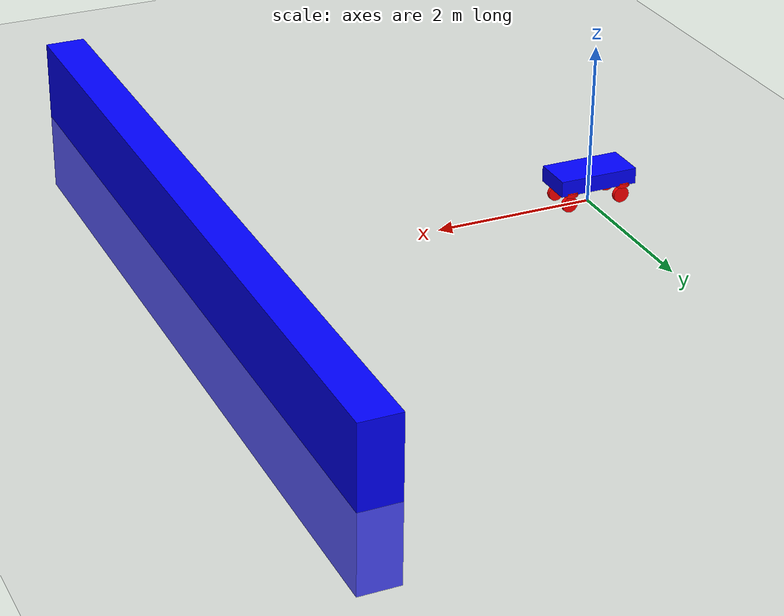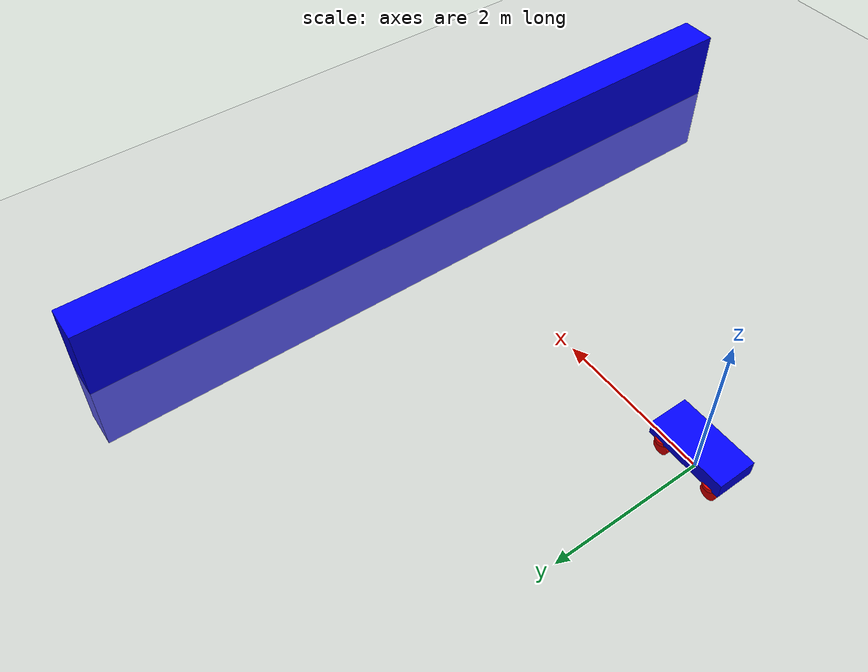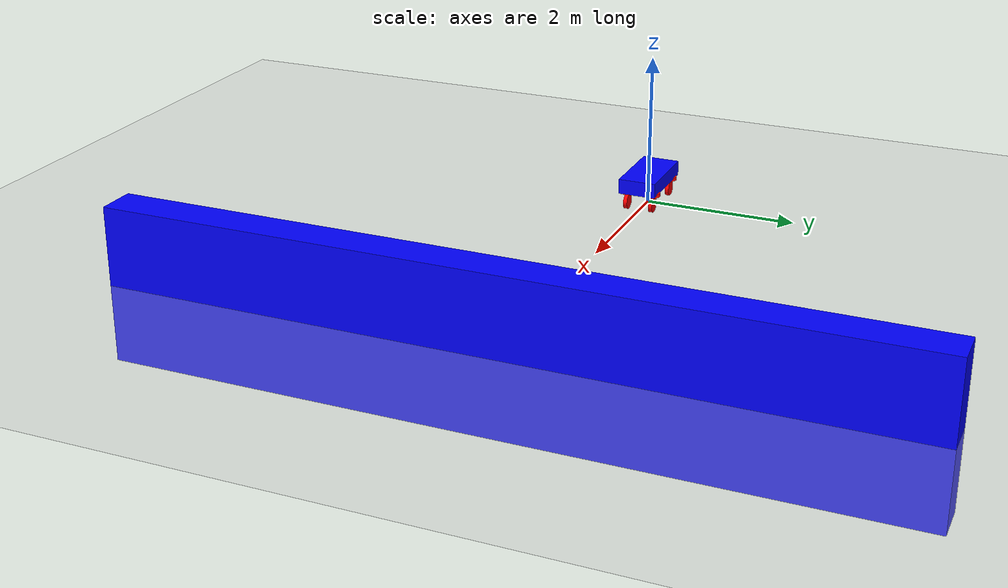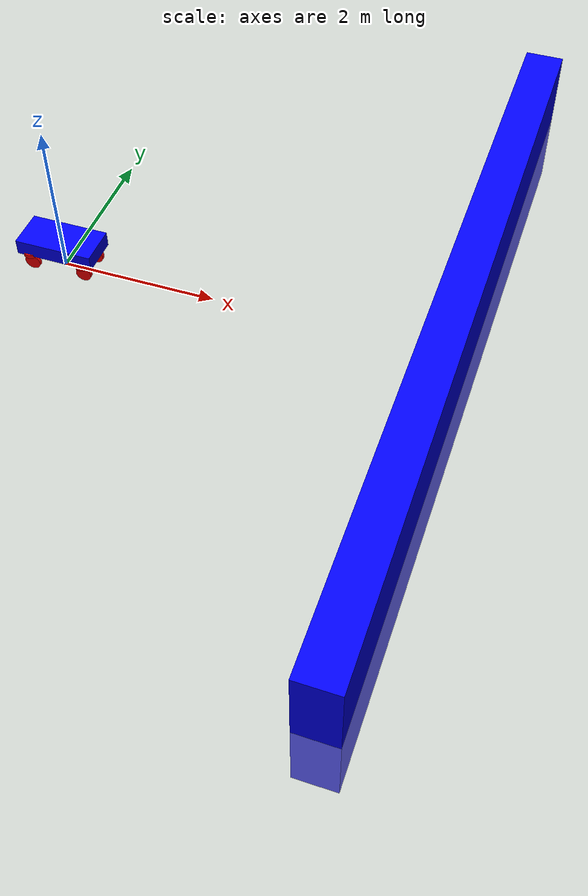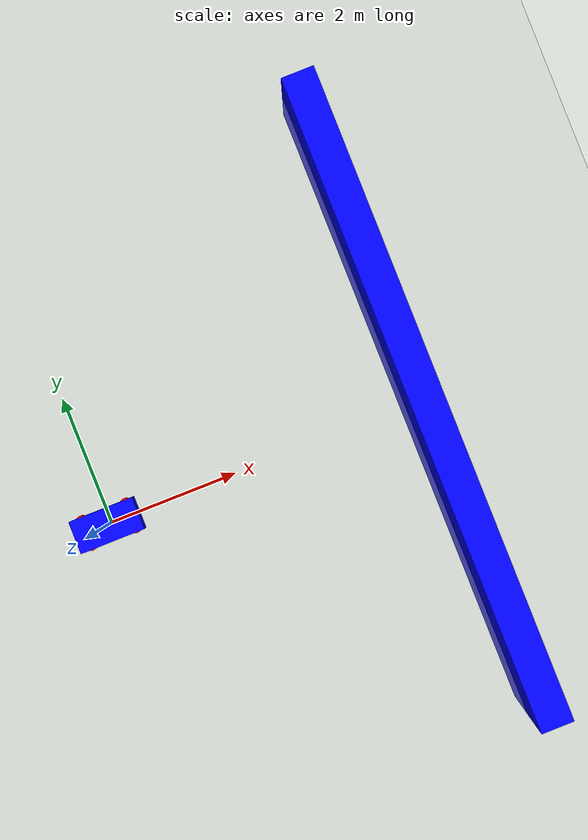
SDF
<?xml version="1.0"?>
<sdf version="1.8">
    <world name="Moving_robot">
        <physics name="1ms" type="ignored">
            <max_step_size>0.001</max_step_size>
            <real_time_factor>1.0</real_time_factor>
        </physics>
        <plugin
            filename="libignition-gazebo-physics-system.so"
            name="ignition::gazebo::systems::Physics">
        </plugin>
        <plugin
            filename="libignition-gazebo-user-commands-system.so"
            name="ignition::gazebo::systems::UserCommands">
        </plugin>
        <plugin
            filename="libignition-gazebo-scene-broadcaster-system.so"
            name="ignition::gazebo::systems::SceneBroadcaster">
        </plugin>
        <plugin filename="libignition-gazebo-imu-system.so"
            name="ignition::gazebo::systems::Imu">
        </plugin>
        <plugin filename="libignition-gazebo-contact-system.so"
            name="ignition::gazebo::systems::Contact">
        </plugin>

        <plugin filename="libignition-gazebo-imu-system.so"
            name="ignition::gazebo::systems::Imu">
        </plugin>

        <plugin filename="ignition-gazebo-sensors-system"
            name="ignition::gazebo::systems::Sensors">
            <render_engine>ogre2</render_engine>
        </plugin>

        <light type="directional" name="sun">
            <cast_shadows>true</cast_shadows>
            <pose>0 0 10 0 0 0</pose>
            <diffuse>0.8 0.8 0.8 1</diffuse>
            <specular>0.2 0.2 0.2 1</specular>
            <attenuation>
                <range>1000</range>
                <constant>0.9</constant>
                <linear>0.01</linear>
                <quadratic>0.001</quadratic>
            </attenuation>
            <direction>-0.5 0.1 -0.9</direction>
        </light>

        <model name="ground_plane">
            <static>true</static>
            <link name="link">
                <collision name="collision">
                    <geometry>
                        <plane>
                            <normal>0 0 1</normal>
                        </plane>
                    </geometry>
                </collision>
                <visual name="visual">
                    <geometry>
                        <plane>
                            <normal>0 0 1</normal>
                            <size>100 100</size>
                        </plane>
                    </geometry>
                    <material>
                        <ambient>0.8 0.8 0.8 1</ambient>
                        <diffuse>0.8 0.8 0.8 1</diffuse>
                        <specular>0.8 0.8 0.8 1</specular>
                    </material>
                </visual>
            </link>
        </model>

        <model name="finns_car" canonical_link="chassis">
            <pose relative_to='world'>0 0 0 0 0 0</pose>
            <link name="chassis">
                <pose relative_to="__model__">0 0 0.35 0 0 0</pose>
                <!-- TODO: Make this accurate -->
                <inertial> <!--inertial
                    properties of the link mass, inertia matix-->
                    <mass>1.14395</mass>
                    <inertia>
                        <ixx>0.095329</ixx>
                        <ixy>0</ixy>
                        <ixz>0</ixz>
                        <iyy>0.381317</iyy>
                        <iyz>0</iyz>
                        <izz>0.476646</izz>
                    </inertia>
                </inertial>
                <visual name='visual'>
                    <geometry>
                        <box>
                            <size>1.0 0.5 0.20</size>
                        </box>
                    </geometry>
                    <!--let's
                    add color to our link-->
                    <material>
                        <ambient>0.0 0.0 1.0 1</ambient>
                        <diffuse>0.0 0.0 1.0 1</diffuse>
                        <specular>0.0 0.0 1.0 1</specular>
                    </material>
                </visual>
                <collision name='collision'>
                    <geometry>
                        <box>
                            <size>1.0 0.5 0.5</size>
                        </box>
                    </geometry>
                </collision>
            </link>

            <frame name="front_left_frame" attached_to='chassis'>
                <pose>0.35 0.175 -0.10 0 0 0</pose>
            </frame>
            <link name='front_left_wheel'>
                <pose relative_to="front_left_frame">0 0 -0.15 -1.57 0 0</pose>
                <inertial>
                    <mass>1</mass>
                    <inertia>
                        <ixx>0.043333</ixx>
                        <ixy>0</ixy>
                        <ixz>0</ixz>
                        <iyy>0.043333</iyy>
                        <iyz>0</iyz>
                        <izz>0.08</izz>
                    </inertia>
                </inertial>
                <visual name='visual'>
                    <geometry>
                        <cylinder>
                            <radius>0.1</radius>
                            <length>0.05</length>
                        </cylinder>
                    </geometry>
                    <material>
                        <ambient>1.0 0.0 0.0 1</ambient>
                        <diffuse>1.0 0.0 0.0 1</diffuse>
                        <specular>1.0 0.0 0.0 1</specular>
                    </material>
                </visual>
                <collision name='collision'>
                    <geometry>
                        <cylinder>
                            <radius>0.1</radius>
                            <length>0.05</length>
                        </cylinder>
                    </geometry>
                </collision>
            </link>
            <link name='front_left'>
                <pose relative_to="front_left_frame">0 0 0 0 0 0</pose>
                <inertial>
                    <mass>1</mass>
                    <inertia>
                        <ixx>0.043333</ixx>
                        <ixy>0</ixy>
                        <ixz>0</ixz>
                        <iyy>0.043333</iyy>
                        <iyz>0</iyz>
                        <izz>0.08</izz>
                    </inertia>
                </inertial>
                <visual name='visual'>
                    <geometry>
                        <cylinder>
                            <radius>0.1</radius>
                            <length>0.05</length>
                        </cylinder>
                    </geometry>
                    <material>
                        <ambient>1.0 0.0 0.0 1</ambient>
                        <diffuse>1.0 0.0 0.0 1</diffuse>
                        <specular>1.0 0.0 0.0 1</specular>
                    </material>
                </visual>
                <collision name='collision'>
                    <geometry>
                        <cylinder>
                            <radius>0.1</radius>
                            <length>0.05</length>
                        </cylinder>
                    </geometry>
                </collision>
            </link>
            <joint name="front_left_wheel_joint" type="revolute">
                <pose relative_to="front_left_frame">0 0 -0.15 -1.57 0 0</pose>
                <parent>front_left</parent>
                <child>front_left_wheel</child>
                <axis>
                    <xyz expressed_in='__model__'>0 1 0</xyz> <!--can
                    be defined as any frame or even arbitrary frames-->
                    <limit>
                        <lower>-1.79769e+308</lower>    <!--negative
                        infinity-->
                        <upper>1.79769e+308</upper>     <!--positive
                        infinity-->
                    </limit>
                </axis>
            </joint>
            <joint name="front_left_joint" type="revolute">
                <pose relative_to="front_left_frame" />
                <parent>chassis</parent>
                <child>front_left</child>
                <axis>
                    <xyz expressed_in='__model__'>0 0 1</xyz> <!--can
                    be defined as any frame or even arbitrary frames-->
                    <limit>
                        <lower>-1.79769e+308</lower>    <!--negative
                        infinity-->
                        <upper>1.79769e+308</upper>     <!--positive
                        infinity-->
                    </limit>
                </axis>
            </joint>

            <frame name="front_right_frame" attached_to='chassis'>
                <pose>0.35 -0.175 -0.10 0 0 0</pose>
            </frame>
            <link name='front_right_wheel'>
                <pose relative_to="front_right_frame">0 0 -0.15 -1.57 0 0</pose>
                <inertial>
                    <mass>1</mass>
                    <inertia>
                        <ixx>0.043333</ixx>
                        <ixy>0</ixy>
                        <ixz>0</ixz>
                        <iyy>0.043333</iyy>
                        <iyz>0</iyz>
                        <izz>0.08</izz>
                    </inertia>
                </inertial>
                <visual name='visual'>
                    <geometry>
                        <cylinder>
                            <radius>0.1</radius>
                            <length>0.05</length>
                        </cylinder>
                    </geometry>
                    <material>
                        <ambient>1.0 0.0 0.0 1</ambient>
                        <diffuse>1.0 0.0 0.0 1</diffuse>
                        <specular>1.0 0.0 0.0 1</specular>
                    </material>
                </visual>
                <collision name='collision'>
                    <geometry>
                        <cylinder>
                            <radius>0.1</radius>
                            <length>0.05</length>
                        </cylinder>
                    </geometry>
                </collision>
            </link>
            <link name='front_right'>
                <pose relative_to="front_right_frame">0 0 0 0 0 0</pose>
                <inertial>
                    <mass>1</mass>
                    <inertia>
                        <ixx>0.043333</ixx>
                        <ixy>0</ixy>
                        <ixz>0</ixz>
                        <iyy>0.043333</iyy>
                        <iyz>0</iyz>
                        <izz>0.08</izz>
                    </inertia>
                </inertial>
                <visual name='visual'>
                    <geometry>
                        <cylinder>
                            <radius>0.1</radius>
                            <length>0.05</length>
                        </cylinder>
                    </geometry>
                    <material>
                        <ambient>1.0 0.0 0.0 1</ambient>
                        <diffuse>1.0 0.0 0.0 1</diffuse>
                        <specular>1.0 0.0 0.0 1</specular>
                    </material>
                </visual>
                <collision name='collision'>
                    <geometry>
                        <cylinder>
                            <radius>0.1</radius>
                            <length>0.05</length>
                        </cylinder>
                    </geometry>
                </collision>
            </link>
            <joint name="front_right_wheel_joint" type="revolute">
                <pose relative_to="front_right_frame">0 0 -0.15 -1.57 0 0</pose>
                <parent>front_right</parent>
                <child>front_right_wheel</child>
                <axis>
                    <xyz expressed_in='__model__'>0 1 0</xyz> <!--can
                    be defined as any frame or even arbitrary frames-->
                    <limit>
                        <lower>-1.79769e+308</lower>    <!--negative
                        infinity-->
                        <upper>1.79769e+308</upper>     <!--positive
                        infinity-->
                    </limit>
                </axis>
            </joint>
            <joint name="front_right_joint" type="revolute">
                <pose relative_to="front_right_frame" />
                <parent>chassis</parent>
                <child>front_right</child>
                <axis>
                    <xyz expressed_in='__model__'>0 0 1</xyz> <!--can
                    be defined as any frame or even arbitrary frames-->
                    <limit>
                        <lower>-1.79769e+308</lower>    <!--negative
                        infinity-->
                        <upper>1.79769e+308</upper>     <!--positive
                        infinity-->
                    </limit>
                </axis>
            </joint>

            <frame name="back_right_frame" attached_to='chassis'>
                <pose>-0.35 -0.175 -0.10 0 0 0</pose>
            </frame>
            <link name='back_right_wheel'>
                <pose relative_to="back_right_frame">0 0 -0.15 -1.57 0 0</pose>
                <inertial>
                    <mass>1</mass>
                    <inertia>
                        <ixx>0.043333</ixx>
                        <ixy>0</ixy>
                        <ixz>0</ixz>
                        <iyy>0.043333</iyy>
                        <iyz>0</iyz>
                        <izz>0.08</izz>
                    </inertia>
                </inertial>
                <visual name='visual'>
                    <geometry>
                        <cylinder>
                            <radius>0.1</radius>
                            <length>0.05</length>
                        </cylinder>
                    </geometry>
                    <material>
                        <ambient>1.0 0.0 0.0 1</ambient>
                        <diffuse>1.0 0.0 0.0 1</diffuse>
                        <specular>1.0 0.0 0.0 1</specular>
                    </material>
                </visual>
                <collision name='collision'>
                    <geometry>
                        <cylinder>
                            <radius>0.1</radius>
                            <length>0.05</length>
                        </cylinder>
                    </geometry>
                </collision>
            </link>
            <link name='back_right'>
                <pose relative_to="back_right_frame">0 0 0 0 0 0</pose>
                <inertial>
                    <mass>1</mass>
                    <inertia>
                        <ixx>0.043333</ixx>
                        <ixy>0</ixy>
                        <ixz>0</ixz>
                        <iyy>0.043333</iyy>
                        <iyz>0</iyz>
                        <izz>0.08</izz>
                    </inertia>
                </inertial>
                <visual name='visual'>
                    <geometry>
                        <cylinder>
                            <radius>0.1</radius>
                            <length>0.05</length>
                        </cylinder>
                    </geometry>
                    <material>
                        <ambient>1.0 0.0 0.0 1</ambient>
                        <diffuse>1.0 0.0 0.0 1</diffuse>
                        <specular>1.0 0.0 0.0 1</specular>
                    </material>
                </visual>
                <collision name='collision'>
                    <geometry>
                        <cylinder>
                            <radius>0.1</radius>
                            <length>0.05</length>
                        </cylinder>
                    </geometry>
                </collision>
            </link>
            <joint name="back_right_joint" type="revolute">
                <pose relative_to="back_right_frame">0 0 -0.15 -1.57 0 0</pose>
                <parent>back_right</parent>
                <child>back_right_wheel</child>
                <axis>
                    <xyz expressed_in='__model__'>0 1 0</xyz> <!--can
                    be defined as any frame or even arbitrary frames-->
                    <limit>
                        <lower>-1.79769e+308</lower>    <!--negative
                        infinity-->
                        <upper>1.79769e+308</upper>     <!--positive
                        infinity-->
                    </limit>
                </axis>
            </joint>
            <joint name="back_right_wheel_joint" type="fixed">
                <pose relative_to="back_right_frame" />
                <parent>chassis</parent>
                <child>back_right</child>
                <axis>
                    <xyz expressed_in='__model__'>0 0 1</xyz> <!--can
                    be defined as any frame or even arbitrary frames-->
                    <limit>
                        <lower>-1.79769e+308</lower>    <!--negative
                        infinity-->
                        <upper>1.79769e+308</upper>     <!--positive
                        infinity-->
                    </limit>
                </axis>
            </joint>

            <frame name="back_left_frame" attached_to='chassis'>
                <pose>-0.35 0.175 -0.10 0 0 0</pose>
            </frame>
            <link name='back_left_wheel'>
                <pose relative_to="back_left_frame">0 0 -0.15 -1.57 0 0</pose>
                <inertial>
                    <mass>1</mass>
                    <inertia>
                        <ixx>0.043333</ixx>
                        <ixy>0</ixy>
                        <ixz>0</ixz>
                        <iyy>0.043333</iyy>
                        <iyz>0</iyz>
                        <izz>0.08</izz>
                    </inertia>
                </inertial>
                <visual name='visual'>
                    <geometry>
                        <cylinder>
                            <radius>0.1</radius>
                            <length>0.05</length>
                        </cylinder>
                    </geometry>
                    <material>
                        <ambient>1.0 0.0 0.0 1</ambient>
                        <diffuse>1.0 0.0 0.0 1</diffuse>
                        <specular>1.0 0.0 0.0 1</specular>
                    </material>
                </visual>
                <collision name='collision'>
                    <geometry>
                        <cylinder>
                            <radius>0.1</radius>
                            <length>0.05</length>
                        </cylinder>
                    </geometry>
                </collision>
            </link>
            <link name='back_left'>
                <pose relative_to="back_left_frame">0 0 0 0 0 0</pose>
                <inertial>
                    <mass>1</mass>
                    <inertia>
                        <ixx>0.043333</ixx>
                        <ixy>0</ixy>
                        <ixz>0</ixz>
                        <iyy>0.043333</iyy>
                        <iyz>0</iyz>
                        <izz>0.08</izz>
                    </inertia>
                </inertial>
                <visual name='visual'>
                    <geometry>
                        <cylinder>
                            <radius>0.1</radius>
                            <length>0.05</length>
                        </cylinder>
                    </geometry>
                    <material>
                        <ambient>1.0 0.0 0.0 1</ambient>
                        <diffuse>1.0 0.0 0.0 1</diffuse>
                        <specular>1.0 0.0 0.0 1</specular>
                    </material>
                </visual>
                <collision name='collision'>
                    <geometry>
                        <cylinder>
                            <radius>0.1</radius>
                            <length>0.05</length>
                        </cylinder>
                    </geometry>
                </collision>
            </link>
            <joint name="back_left_joint" type="revolute">
                <pose relative_to="back_left_frame">0 0 -0.15 -1.57 0 0</pose>
                <parent>back_left</parent>
                <child>back_left_wheel</child>
                <axis>
                    <xyz expressed_in='__model__'>0 1 0</xyz> <!--can
                    be defined as any frame or even arbitrary frames-->
                    <limit>
                        <lower>-1.79769e+308</lower>    <!--negative
                        infinity-->
                        <upper>1.79769e+308</upper>     <!--positive
                        infinity-->
                    </limit>
                </axis>
            </joint>
            <joint name="back_left_wheel_joint" type="fixed">
                <pose relative_to="back_left_frame" />
                <parent>chassis</parent>
                <child>back_left</child>
                <axis>
                    <xyz expressed_in='__model__'>0 0 1</xyz> <!--can
                    be defined as any frame or even arbitrary frames-->
                    <limit>
                        <lower>-1.79769e+308</lower>    <!--negative
                        infinity-->
                        <upper>1.79769e+308</upper>     <!--positive
                        infinity-->
                    </limit>
                </axis>
            </joint>

            <plugin
                filename="libignition-gazebo-ackermann-steering-system.so"
                name="ignition::gazebo::systems::AckermannSteering">
                <left_joint>front_left_wheel_joint</left_joint>
                <right_joint>front_right_wheel_joint</right_joint>
                <left_joint>back_left_wheel_joint</left_joint>
                <right_joint>back_right_wheel_joint</right_joint>
                <left_steering_joint>front_left_joint</left_steering_joint>
                <right_steering_joint>front_right_joint</right_steering_joint>
                <wheel_separation>0.35</wheel_separation>
                <kingpin_width>0.30</kingpin_width>
                <wheel_base>0.7</wheel_base>
                <wheel_radius>0.1</wheel_radius>
                <steering_limit>1.57</steering_limit>
                <odom_publish_frequency>1</odom_publish_frequency>
                <topic>cmd_vel</topic>
            </plugin>

        </model>

        <model name='wall'>
            <static>true</static>
            <pose>5 0 0 0 0 0</pose><!--pose
            relative to the world-->

            <plugin filename="libignition-gazebo-touchplugin-system.so"
                name="ignition::gazebo::systems::TouchPlugin">
                <target>vehicle_blue</target>
                <namespace>wall</namespace>
                <time>0.001</time>
                <enabled>true</enabled>
            </plugin>
            <link name='box'>
                <sensor name='sensor_contact' type='contact'>
                    <contact>
                        <collision>collision</collision>
                    </contact>
                </sensor>
                <pose />
                <visual name='visual'>
                    <geometry>
                        <box>
                            <size>0.5 10.0 2.0</size>
                        </box>
                    </geometry>
                    <!--let's
                    add color to our link-->
                    <material>
                        <ambient>0.0 0.0 1.0 1</ambient>
                        <diffuse>0.0 0.0 1.0 1</diffuse>
                        <specular>0.0 0.0 1.0 1</specular>
                    </material>
                </visual>
                <collision name='collision'>
                    <geometry>
                        <box>
                            <size>0.5 10.0 2.0</size>
                        </box>
                    </geometry>
                </collision>
            </link>
        </model>

        <!-- Moving Forward-->
        <plugin filename="libignition-gazebo-triggered-publisher-system.so"
            name="ignition::gazebo::systems::TriggeredPublisher">
            <input type="ignition.msgs.Int32" topic="/keyboard/keypress">
                <match field="data">16777235</match>
            </input>
            <output type="ignition.msgs.Twist" topic="/cmd_vel">
                linear: {x: 0.5}, angular: {z: 0.0}
            </output>
        </plugin>

        <!-- Moving Backward-->
        <plugin filename="libignition-gazebo-triggered-publisher-system.so"
            name="ignition::gazebo::systems::TriggeredPublisher">
            <input type="ignition.msgs.Int32" topic="/keyboard/keypress">
                <match field="data">16777237</match>
            </input>
            <output type="ignition.msgs.Twist" topic="/cmd_vel">
                linear: {x: -0.5}, angular: {z: 0.0}
            </output>
        </plugin>

        <!-- Rotating right-->
        <plugin filename="libignition-gazebo-triggered-publisher-system.so"
            name="ignition::gazebo::systems::TriggeredPublisher">
            <input type="ignition.msgs.Int32" topic="/keyboard/keypress">
                <match field="data">16777236</match>
            </input>
            <output type="ignition.msgs.Twist" topic="/cmd_vel">
                linear: {x: 0.0}, angular: {z: -0.5}
            </output>
        </plugin>

        <!--Rotating
        left-->
        <plugin filename="libignition-gazebo-triggered-publisher-system.so"
            name="ignition::gazebo::systems::TriggeredPublisher">
            <input type="ignition.msgs.Int32" topic="/keyboard/keypress">
                <match field="data">16777234</match>
            </input>
            <output type="ignition.msgs.Twist" topic="/cmd_vel">
                linear: {x: 0.0}, angular: {z: 0.5}
            </output>
        </plugin>
    </world>
</sdf>
